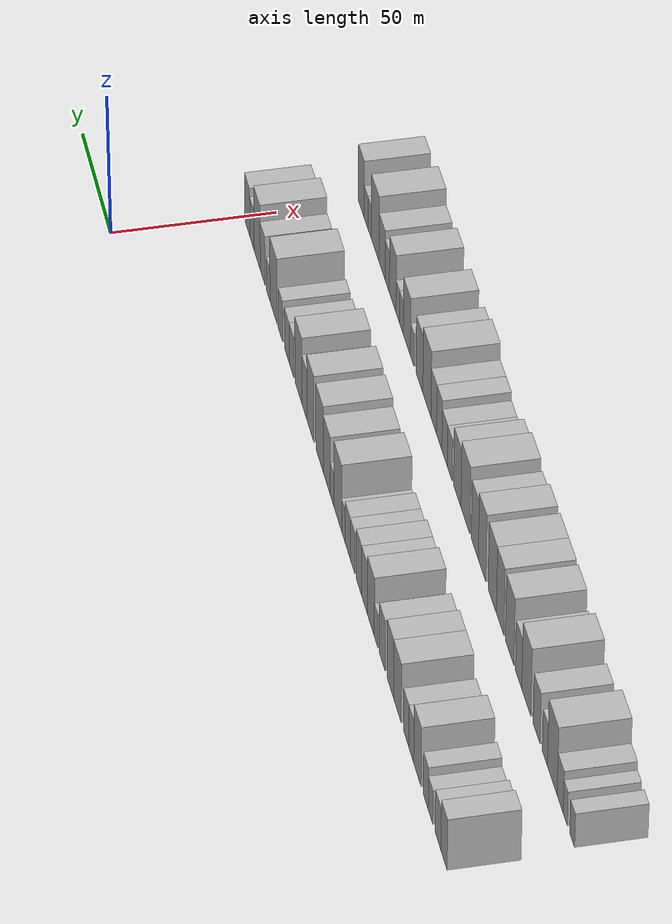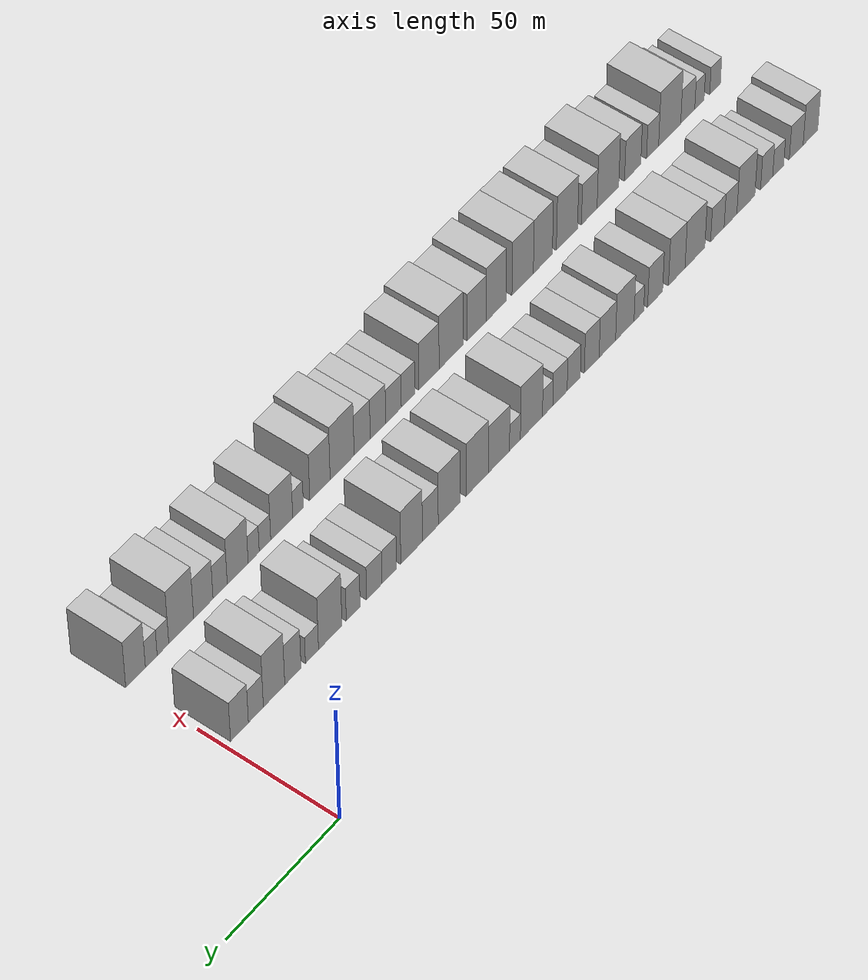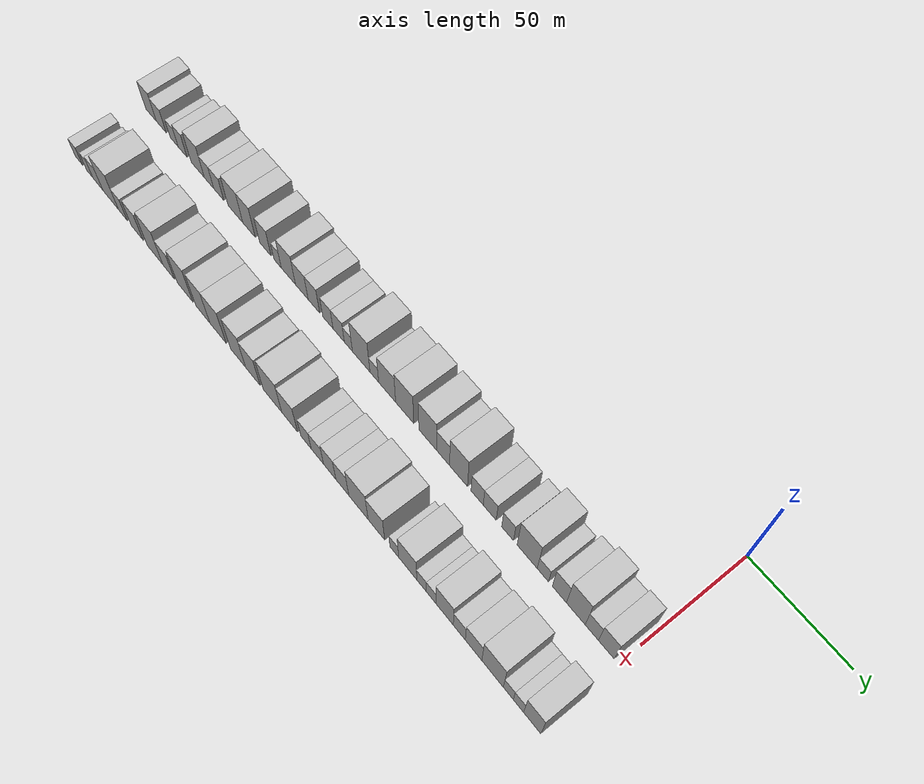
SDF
<sdf version="1.6">
 <world name="default">
  <model name="building_1">
   <static>1</static>
   <pose>50.0000 -286.0675 0 0.000000 0.000000 0.000000</pose>
   <link name="link">
    <pose>0 0 9.00 0 0 0</pose>
    <collision name="collision"><geometry><box><size>20.0000 7.8650 18.0000</size></box></geometry></collision>
    <visual name="visual">
     <cast_shadows>0</cast_shadows>
     <geometry><box><size>20.0000 7.8650 18.0000</size></box></geometry>
     <material>
      <script>
       <uri>model://HANNAS_wall/materials/scripts</uri>
       <uri>model://HANNAS_wall/materials/textures</uri>
       <name>vrc/HANNAS_wall</name>
      </script>
     </material>
    </visual>
   </link>
  </model>
  <model name="building_2">
   <static>1</static>
   <pose>50.0000 -278.4291 0 0.000000 0.000000 0.000000</pose>
   <link name="link">
    <pose>0 0 7.50 0 0 0</pose>
    <collision name="collision"><geometry><box><size>20.0000 7.4119 15.0000</size></box></geometry></collision>
    <visual name="visual">
     <cast_shadows>0</cast_shadows>
     <geometry><box><size>20.0000 7.4119 15.0000</size></box></geometry>
     <material>
      <script>
       <uri>model://HANNAS_wall/materials/scripts</uri>
       <uri>model://HANNAS_wall/materials/textures</uri>
       <name>vrc/HANNAS_wall</name>
      </script>
     </material>
    </visual>
   </link>
  </model>
  <model name="building_3">
   <static>1</static>
   <pose>50.0000 -268.7812 0 0.000000 0.000000 0.000000</pose>
   <link name="link">
    <pose>0 0 6.00 0 0 0</pose>
    <collision name="collision"><geometry><box><size>20.0000 5.8838 12.0000</size></box></geometry></collision>
    <visual name="visual">
     <cast_shadows>0</cast_shadows>
     <geometry><box><size>20.0000 5.8838 12.0000</size></box></geometry>
     <material>
      <script>
       <uri>model://HANNAS_wall/materials/scripts</uri>
       <uri>model://HANNAS_wall/materials/textures</uri>
       <name>vrc/HANNAS_wall</name>
      </script>
     </material>
    </visual>
   </link>
  </model>
  <model name="building_4">
   <static>1</static>
   <pose>50.0000 -262.6302 0 0.000000 0.000000 0.000000</pose>
   <link name="link">
    <pose>0 0 7.50 0 0 0</pose>
    <collision name="collision"><geometry><box><size>20.0000 6.4182 15.0000</size></box></geometry></collision>
    <visual name="visual">
     <cast_shadows>0</cast_shadows>
     <geometry><box><size>20.0000 6.4182 15.0000</size></box></geometry>
     <material>
      <script>
       <uri>model://HANNAS_wall/materials/scripts</uri>
       <uri>model://HANNAS_wall/materials/textures</uri>
       <name>vrc/HANNAS_wall</name>
      </script>
     </material>
    </visual>
   </link>
  </model>
  <model name="building_5">
   <static>1</static>
   <pose>50.0000 -251.6688 0 0.000000 0.000000 0.000000</pose>
   <link name="link">
    <pose>0 0 10.50 0 0 0</pose>
    <collision name="collision"><geometry><box><size>20.0000 9.5047 21.0000</size></box></geometry></collision>
    <visual name="visual">
     <cast_shadows>0</cast_shadows>
     <geometry><box><size>20.0000 9.5047 21.0000</size></box></geometry>
     <material>
      <script>
       <uri>model://HANNAS_wall/materials/scripts</uri>
       <uri>model://HANNAS_wall/materials/textures</uri>
       <name>vrc/HANNAS_wall</name>
      </script>
     </material>
    </visual>
   </link>
  </model>
  <model name="building_6">
   <static>1</static>
   <pose>50.0000 -243.5959 0 0.000000 0.000000 0.000000</pose>
   <link name="link">
    <pose>0 0 7.50 0 0 0</pose>
    <collision name="collision"><geometry><box><size>20.0000 6.6412 15.0000</size></box></geometry></collision>
    <visual name="visual">
     <cast_shadows>0</cast_shadows>
     <geometry><box><size>20.0000 6.6412 15.0000</size></box></geometry>
     <material>
      <script>
       <uri>model://HANNAS_wall/materials/scripts</uri>
       <uri>model://HANNAS_wall/materials/textures</uri>
       <name>vrc/HANNAS_wall</name>
      </script>
     </material>
    </visual>
   </link>
  </model>
  <model name="building_7">
   <static>1</static>
   <pose>50.0000 -236.7432 0 0.000000 0.000000 0.000000</pose>
   <link name="link">
    <pose>0 0 7.50 0 0 0</pose>
    <collision name="collision"><geometry><box><size>20.0000 7.0642 15.0000</size></box></geometry></collision>
    <visual name="visual">
     <cast_shadows>0</cast_shadows>
     <geometry><box><size>20.0000 7.0642 15.0000</size></box></geometry>
     <material>
      <script>
       <uri>model://HANNAS_wall/materials/scripts</uri>
       <uri>model://HANNAS_wall/materials/textures</uri>
       <name>vrc/HANNAS_wall</name>
      </script>
     </material>
    </visual>
   </link>
  </model>
  <model name="building_8">
   <static>1</static>
   <pose>50.0000 -225.0730 0 0.000000 0.000000 0.000000</pose>
   <link name="link">
    <pose>0 0 10.50 0 0 0</pose>
    <collision name="collision"><geometry><box><size>20.0000 10.2760 21.0000</size></box></geometry></collision>
    <visual name="visual">
     <cast_shadows>0</cast_shadows>
     <geometry><box><size>20.0000 10.2760 21.0000</size></box></geometry>
     <material>
      <script>
       <uri>model://HANNAS_wall/materials/scripts</uri>
       <uri>model://HANNAS_wall/materials/textures</uri>
       <name>vrc/HANNAS_wall</name>
      </script>
     </material>
    </visual>
   </link>
  </model>
  <model name="building_9">
   <static>1</static>
   <pose>50.0000 -215.6762 0 0.000000 0.000000 0.000000</pose>
   <link name="link">
    <pose>0 0 10.50 0 0 0</pose>
    <collision name="collision"><geometry><box><size>20.0000 8.5176 21.0000</size></box></geometry></collision>
    <visual name="visual">
     <cast_shadows>0</cast_shadows>
     <geometry><box><size>20.0000 8.5176 21.0000</size></box></geometry>
     <material>
      <script>
       <uri>model://HANNAS_wall/materials/scripts</uri>
       <uri>model://HANNAS_wall/materials/textures</uri>
       <name>vrc/HANNAS_wall</name>
      </script>
     </material>
    </visual>
   </link>
  </model>
  <model name="building_10">
   <static>1</static>
   <pose>50.0000 -204.5940 0 0.000000 0.000000 0.000000</pose>
   <link name="link">
    <pose>0 0 9.00 0 0 0</pose>
    <collision name="collision"><geometry><box><size>20.0000 7.6467 18.0000</size></box></geometry></collision>
    <visual name="visual">
     <cast_shadows>0</cast_shadows>
     <geometry><box><size>20.0000 7.6467 18.0000</size></box></geometry>
     <material>
      <script>
       <uri>model://HANNAS_wall/materials/scripts</uri>
       <uri>model://HANNAS_wall/materials/textures</uri>
       <name>vrc/HANNAS_wall</name>
      </script>
     </material>
    </visual>
   </link>
  </model>
  <model name="building_11">
   <static>1</static>
   <pose>50.0000 -196.3125 0 0.000000 0.000000 0.000000</pose>
   <link name="link">
    <pose>0 0 6.00 0 0 0</pose>
    <collision name="collision"><geometry><box><size>20.0000 4.9163 12.0000</size></box></geometry></collision>
    <visual name="visual">
     <cast_shadows>0</cast_shadows>
     <geometry><box><size>20.0000 4.9163 12.0000</size></box></geometry>
     <material>
      <script>
       <uri>model://HANNAS_wall/materials/scripts</uri>
       <uri>model://HANNAS_wall/materials/textures</uri>
       <name>vrc/HANNAS_wall</name>
      </script>
     </material>
    </visual>
   </link>
  </model>
  <model name="building_12">
   <static>1</static>
   <pose>50.0000 -189.1845 0 0.000000 0.000000 0.000000</pose>
   <link name="link">
    <pose>0 0 10.50 0 0 0</pose>
    <collision name="collision"><geometry><box><size>20.0000 9.3396 21.0000</size></box></geometry></collision>
    <visual name="visual">
     <cast_shadows>0</cast_shadows>
     <geometry><box><size>20.0000 9.3396 21.0000</size></box></geometry>
     <material>
      <script>
       <uri>model://HANNAS_wall/materials/scripts</uri>
       <uri>model://HANNAS_wall/materials/textures</uri>
       <name>vrc/HANNAS_wall</name>
      </script>
     </material>
    </visual>
   </link>
  </model>
  <model name="building_13">
   <static>1</static>
   <pose>50.0000 -180.3806 0 0.000000 0.000000 0.000000</pose>
   <link name="link">
    <pose>0 0 9.00 0 0 0</pose>
    <collision name="collision"><geometry><box><size>20.0000 8.2682 18.0000</size></box></geometry></collision>
    <visual name="visual">
     <cast_shadows>0</cast_shadows>
     <geometry><box><size>20.0000 8.2682 18.0000</size></box></geometry>
     <material>
      <script>
       <uri>model://HANNAS_wall/materials/scripts</uri>
       <uri>model://HANNAS_wall/materials/textures</uri>
       <name>vrc/HANNAS_wall</name>
      </script>
     </material>
    </visual>
   </link>
  </model>
  <model name="building_14">
   <static>1</static>
   <pose>50.0000 -172.5509 0 0.000000 0.000000 0.000000</pose>
   <link name="link">
    <pose>0 0 9.00 0 0 0</pose>
    <collision name="collision"><geometry><box><size>20.0000 7.3913 18.0000</size></box></geometry></collision>
    <visual name="visual">
     <cast_shadows>0</cast_shadows>
     <geometry><box><size>20.0000 7.3913 18.0000</size></box></geometry>
     <material>
      <script>
       <uri>model://HANNAS_wall/materials/scripts</uri>
       <uri>model://HANNAS_wall/materials/textures</uri>
       <name>vrc/HANNAS_wall</name>
      </script>
     </material>
    </visual>
   </link>
  </model>
  <model name="building_15">
   <static>1</static>
   <pose>50.0000 -163.5788 0 0.000000 0.000000 0.000000</pose>
   <link name="link">
    <pose>0 0 7.50 0 0 0</pose>
    <collision name="collision"><geometry><box><size>20.0000 6.5529 15.0000</size></box></geometry></collision>
    <visual name="visual">
     <cast_shadows>0</cast_shadows>
     <geometry><box><size>20.0000 6.5529 15.0000</size></box></geometry>
     <material>
      <script>
       <uri>model://HANNAS_wall/materials/scripts</uri>
       <uri>model://HANNAS_wall/materials/textures</uri>
       <name>vrc/HANNAS_wall</name>
      </script>
     </material>
    </visual>
   </link>
  </model>
  <model name="building_16">
   <static>1</static>
   <pose>50.0000 -156.7487 0 0.000000 0.000000 0.000000</pose>
   <link name="link">
    <pose>0 0 7.50 0 0 0</pose>
    <collision name="collision"><geometry><box><size>20.0000 7.1074 15.0000</size></box></geometry></collision>
    <visual name="visual">
     <cast_shadows>0</cast_shadows>
     <geometry><box><size>20.0000 7.1074 15.0000</size></box></geometry>
     <material>
      <script>
       <uri>model://HANNAS_wall/materials/scripts</uri>
       <uri>model://HANNAS_wall/materials/textures</uri>
       <name>vrc/HANNAS_wall</name>
      </script>
     </material>
    </visual>
   </link>
  </model>
  <model name="building_17">
   <static>1</static>
   <pose>50.0000 -150.6562 0 0.000000 0.000000 0.000000</pose>
   <link name="link">
    <pose>0 0 6.00 0 0 0</pose>
    <collision name="collision"><geometry><box><size>20.0000 5.0775 12.0000</size></box></geometry></collision>
    <visual name="visual">
     <cast_shadows>0</cast_shadows>
     <geometry><box><size>20.0000 5.0775 12.0000</size></box></geometry>
     <material>
      <script>
       <uri>model://HANNAS_wall/materials/scripts</uri>
       <uri>model://HANNAS_wall/materials/textures</uri>
       <name>vrc/HANNAS_wall</name>
      </script>
     </material>
    </visual>
   </link>
  </model>
  <model name="building_18">
   <static>1</static>
   <pose>50.0000 -142.7013 0 0.000000 0.000000 0.000000</pose>
   <link name="link">
    <pose>0 0 12.00 0 0 0</pose>
    <collision name="collision"><geometry><box><size>20.0000 10.8324 24.0000</size></box></geometry></collision>
    <visual name="visual">
     <cast_shadows>0</cast_shadows>
     <geometry><box><size>20.0000 10.8324 24.0000</size></box></geometry>
     <material>
      <script>
       <uri>model://HANNAS_wall/materials/scripts</uri>
       <uri>model://HANNAS_wall/materials/textures</uri>
       <name>vrc/HANNAS_wall</name>
      </script>
     </material>
    </visual>
   </link>
  </model>
  <model name="building_19">
   <static>1</static>
   <pose>50.0000 -134.6364 0 0.000000 0.000000 0.000000</pose>
   <link name="link">
    <pose>0 0 6.00 0 0 0</pose>
    <collision name="collision"><geometry><box><size>20.0000 5.2974 12.0000</size></box></geometry></collision>
    <visual name="visual">
     <cast_shadows>0</cast_shadows>
     <geometry><box><size>20.0000 5.2974 12.0000</size></box></geometry>
     <material>
      <script>
       <uri>model://HANNAS_wall/materials/scripts</uri>
       <uri>model://HANNAS_wall/materials/textures</uri>
       <name>vrc/HANNAS_wall</name>
      </script>
     </material>
    </visual>
   </link>
  </model>
  <model name="building_20">
   <static>1</static>
   <pose>50.0000 -126.8587 0 0.000000 0.000000 0.000000</pose>
   <link name="link">
    <pose>0 0 10.50 0 0 0</pose>
    <collision name="collision"><geometry><box><size>20.0000 10.2580 21.0000</size></box></geometry></collision>
    <visual name="visual">
     <cast_shadows>0</cast_shadows>
     <geometry><box><size>20.0000 10.2580 21.0000</size></box></geometry>
     <material>
      <script>
       <uri>model://HANNAS_wall/materials/scripts</uri>
       <uri>model://HANNAS_wall/materials/textures</uri>
       <name>vrc/HANNAS_wall</name>
      </script>
     </material>
    </visual>
   </link>
  </model>
  <model name="building_21">
   <static>1</static>
   <pose>50.0000 -116.3486 0 0.000000 0.000000 0.000000</pose>
   <link name="link">
    <pose>0 0 12.00 0 0 0</pose>
    <collision name="collision"><geometry><box><size>20.0000 10.7622 24.0000</size></box></geometry></collision>
    <visual name="visual">
     <cast_shadows>0</cast_shadows>
     <geometry><box><size>20.0000 10.7622 24.0000</size></box></geometry>
     <material>
      <script>
       <uri>model://HANNAS_wall/materials/scripts</uri>
       <uri>model://HANNAS_wall/materials/textures</uri>
       <name>vrc/HANNAS_wall</name>
      </script>
     </material>
    </visual>
   </link>
  </model>
  <model name="building_22">
   <static>1</static>
   <pose>50.0000 -102.8429 0 0.000000 0.000000 0.000000</pose>
   <link name="link">
    <pose>0 0 12.00 0 0 0</pose>
    <collision name="collision"><geometry><box><size>20.0000 10.2493 24.0000</size></box></geometry></collision>
    <visual name="visual">
     <cast_shadows>0</cast_shadows>
     <geometry><box><size>20.0000 10.2493 24.0000</size></box></geometry>
     <material>
      <script>
       <uri>model://HANNAS_wall/materials/scripts</uri>
       <uri>model://HANNAS_wall/materials/textures</uri>
       <name>vrc/HANNAS_wall</name>
      </script>
     </material>
    </visual>
   </link>
  </model>
  <model name="building_23">
   <static>1</static>
   <pose>50.0000 -93.9561 0 0.000000 0.000000 0.000000</pose>
   <link name="link">
    <pose>0 0 9.00 0 0 0</pose>
    <collision name="collision"><geometry><box><size>20.0000 7.5243 18.0000</size></box></geometry></collision>
    <visual name="visual">
     <cast_shadows>0</cast_shadows>
     <geometry><box><size>20.0000 7.5243 18.0000</size></box></geometry>
     <material>
      <script>
       <uri>model://HANNAS_wall/materials/scripts</uri>
       <uri>model://HANNAS_wall/materials/textures</uri>
       <name>vrc/HANNAS_wall</name>
      </script>
     </material>
    </visual>
   </link>
  </model>
  <model name="building_24">
   <static>1</static>
   <pose>50.0000 -85.1088 0 0.000000 0.000000 0.000000</pose>
   <link name="link">
    <pose>0 0 12.00 0 0 0</pose>
    <collision name="collision"><geometry><box><size>20.0000 10.1702 24.0000</size></box></geometry></collision>
    <visual name="visual">
     <cast_shadows>0</cast_shadows>
     <geometry><box><size>20.0000 10.1702 24.0000</size></box></geometry>
     <material>
      <script>
       <uri>model://HANNAS_wall/materials/scripts</uri>
       <uri>model://HANNAS_wall/materials/textures</uri>
       <name>vrc/HANNAS_wall</name>
      </script>
     </material>
    </visual>
   </link>
  </model>
  <model name="building_25">
   <static>1</static>
   <pose>50.0000 -74.5990 0 0.000000 0.000000 0.000000</pose>
   <link name="link">
    <pose>0 0 7.50 0 0 0</pose>
    <collision name="collision"><geometry><box><size>20.0000 6.8495 15.0000</size></box></geometry></collision>
    <visual name="visual">
     <cast_shadows>0</cast_shadows>
     <geometry><box><size>20.0000 6.8495 15.0000</size></box></geometry>
     <material>
      <script>
       <uri>model://HANNAS_wall/materials/scripts</uri>
       <uri>model://HANNAS_wall/materials/textures</uri>
       <name>vrc/HANNAS_wall</name>
      </script>
     </material>
    </visual>
   </link>
  </model>
  <model name="building_26">
   <static>1</static>
   <pose>50.0000 -67.6113 0 0.000000 0.000000 0.000000</pose>
   <link name="link">
    <pose>0 0 7.50 0 0 0</pose>
    <collision name="collision"><geometry><box><size>20.0000 7.1259 15.0000</size></box></geometry></collision>
    <visual name="visual">
     <cast_shadows>0</cast_shadows>
     <geometry><box><size>20.0000 7.1259 15.0000</size></box></geometry>
     <material>
      <script>
       <uri>model://HANNAS_wall/materials/scripts</uri>
       <uri>model://HANNAS_wall/materials/textures</uri>
       <name>vrc/HANNAS_wall</name>
      </script>
     </material>
    </visual>
   </link>
  </model>
  <model name="building_27">
   <static>1</static>
   <pose>50.0000 -57.8400 0 0.000000 0.000000 0.000000</pose>
   <link name="link">
    <pose>0 0 7.50 0 0 0</pose>
    <collision name="collision"><geometry><box><size>20.0000 6.4167 15.0000</size></box></geometry></collision>
    <visual name="visual">
     <cast_shadows>0</cast_shadows>
     <geometry><box><size>20.0000 6.4167 15.0000</size></box></geometry>
     <material>
      <script>
       <uri>model://HANNAS_wall/materials/scripts</uri>
       <uri>model://HANNAS_wall/materials/textures</uri>
       <name>vrc/HANNAS_wall</name>
      </script>
     </material>
    </visual>
   </link>
  </model>
  <model name="building_28">
   <static>1</static>
   <pose>50.0000 -47.2532 0 0.000000 0.000000 0.000000</pose>
   <link name="link">
    <pose>0 0 12.00 0 0 0</pose>
    <collision name="collision"><geometry><box><size>20.0000 10.7568 24.0000</size></box></geometry></collision>
    <visual name="visual">
     <cast_shadows>0</cast_shadows>
     <geometry><box><size>20.0000 10.7568 24.0000</size></box></geometry>
     <material>
      <script>
       <uri>model://HANNAS_wall/materials/scripts</uri>
       <uri>model://HANNAS_wall/materials/textures</uri>
       <name>vrc/HANNAS_wall</name>
      </script>
     </material>
    </visual>
   </link>
  </model>
  <model name="building_29">
   <static>1</static>
   <pose>50.0000 -38.8885 0 0.000000 0.000000 0.000000</pose>
   <link name="link">
    <pose>0 0 6.00 0 0 0</pose>
    <collision name="collision"><geometry><box><size>20.0000 5.9726 12.0000</size></box></geometry></collision>
    <visual name="visual">
     <cast_shadows>0</cast_shadows>
     <geometry><box><size>20.0000 5.9726 12.0000</size></box></geometry>
     <material>
      <script>
       <uri>model://HANNAS_wall/materials/scripts</uri>
       <uri>model://HANNAS_wall/materials/textures</uri>
       <name>vrc/HANNAS_wall</name>
      </script>
     </material>
    </visual>
   </link>
  </model>
  <model name="building_30">
   <static>1</static>
   <pose>50.0000 -30.2129 0 0.000000 0.000000 0.000000</pose>
   <link name="link">
    <pose>0 0 9.00 0 0 0</pose>
    <collision name="collision"><geometry><box><size>20.0000 7.3786 18.0000</size></box></geometry></collision>
    <visual name="visual">
     <cast_shadows>0</cast_shadows>
     <geometry><box><size>20.0000 7.3786 18.0000</size></box></geometry>
     <material>
      <script>
       <uri>model://HANNAS_wall/materials/scripts</uri>
       <uri>model://HANNAS_wall/materials/textures</uri>
       <name>vrc/HANNAS_wall</name>
      </script>
     </material>
    </visual>
   </link>
  </model>
  <model name="building_31">
   <static>1</static>
   <pose>50.0000 -21.6969 0 0.000000 0.000000 0.000000</pose>
   <link name="link">
    <pose>0 0 12.00 0 0 0</pose>
    <collision name="collision"><geometry><box><size>20.0000 9.6533 24.0000</size></box></geometry></collision>
    <visual name="visual">
     <cast_shadows>0</cast_shadows>
     <geometry><box><size>20.0000 9.6533 24.0000</size></box></geometry>
     <material>
      <script>
       <uri>model://HANNAS_wall/materials/scripts</uri>
       <uri>model://HANNAS_wall/materials/textures</uri>
       <name>vrc/HANNAS_wall</name>
      </script>
     </material>
    </visual>
   </link>
  </model>
  <model name="building_32">
   <static>1</static>
   <pose>50.0000 -13.5113 0 0.000000 0.000000 0.000000</pose>
   <link name="link">
    <pose>0 0 7.50 0 0 0</pose>
    <collision name="collision"><geometry><box><size>20.0000 6.7177 15.0000</size></box></geometry></collision>
    <visual name="visual">
     <cast_shadows>0</cast_shadows>
     <geometry><box><size>20.0000 6.7177 15.0000</size></box></geometry>
     <material>
      <script>
       <uri>model://HANNAS_wall/materials/scripts</uri>
       <uri>model://HANNAS_wall/materials/textures</uri>
       <name>vrc/HANNAS_wall</name>
      </script>
     </material>
    </visual>
   </link>
  </model>
  <model name="building_33">
   <static>1</static>
   <pose>50.0000 -6.1777 0 0.000000 0.000000 0.000000</pose>
   <link name="link">
    <pose>0 0 9.00 0 0 0</pose>
    <collision name="collision"><geometry><box><size>20.0000 7.9495 18.0000</size></box></geometry></collision>
    <visual name="visual">
     <cast_shadows>0</cast_shadows>
     <geometry><box><size>20.0000 7.9495 18.0000</size></box></geometry>
     <material>
      <script>
       <uri>model://HANNAS_wall/materials/scripts</uri>
       <uri>model://HANNAS_wall/materials/textures</uri>
       <name>vrc/HANNAS_wall</name>
      </script>
     </material>
    </visual>
   </link>
  </model>
  <model name="building_67">
   <static>1</static>
   <pose>85.0000 -285.1506 0 0.000000 0.000000 0.000000</pose>
   <link name="link">
    <pose>0 0 6.00 0 0 0</pose>
    <collision name="collision"><geometry><box><size>20.0000 5.6988 12.0000</size></box></geometry></collision>
    <visual name="visual">
     <cast_shadows>0</cast_shadows>
     <geometry><box><size>20.0000 5.6988 12.0000</size></box></geometry>
     <material>
      <script>
       <uri>model://HANNAS_wall/materials/scripts</uri>
       <uri>model://HANNAS_wall/materials/textures</uri>
       <name>vrc/HANNAS_wall</name>
      </script>
     </material>
    </visual>
   </link>
  </model>
  <model name="building_68">
   <static>1</static>
   <pose>85.0000 -276.8259 0 0.000000 0.000000 0.000000</pose>
   <link name="link">
    <pose>0 0 6.00 0 0 0</pose>
    <collision name="collision"><geometry><box><size>20.0000 4.9505 12.0000</size></box></geometry></collision>
    <visual name="visual">
     <cast_shadows>0</cast_shadows>
     <geometry><box><size>20.0000 4.9505 12.0000</size></box></geometry>
     <material>
      <script>
       <uri>model://HANNAS_wall/materials/scripts</uri>
       <uri>model://HANNAS_wall/materials/textures</uri>
       <name>vrc/HANNAS_wall</name>
      </script>
     </material>
    </visual>
   </link>
  </model>
  <model name="building_69">
   <static>1</static>
   <pose>85.0000 -270.6300 0 0.000000 0.000000 0.000000</pose>
   <link name="link">
    <pose>0 0 7.50 0 0 0</pose>
    <collision name="collision"><geometry><box><size>20.0000 7.4412 15.0000</size></box></geometry></collision>
    <visual name="visual">
     <cast_shadows>0</cast_shadows>
     <geometry><box><size>20.0000 7.4412 15.0000</size></box></geometry>
     <material>
      <script>
       <uri>model://HANNAS_wall/materials/scripts</uri>
       <uri>model://HANNAS_wall/materials/textures</uri>
       <name>vrc/HANNAS_wall</name>
      </script>
     </material>
    </visual>
   </link>
  </model>
  <model name="building_70">
   <static>1</static>
   <pose>85.0000 -261.0859 0 0.000000 0.000000 0.000000</pose>
   <link name="link">
    <pose>0 0 12.00 0 0 0</pose>
    <collision name="collision"><geometry><box><size>20.0000 11.6471 24.0000</size></box></geometry></collision>
    <visual name="visual">
     <cast_shadows>0</cast_shadows>
     <geometry><box><size>20.0000 11.6471 24.0000</size></box></geometry>
     <material>
      <script>
       <uri>model://HANNAS_wall/materials/scripts</uri>
       <uri>model://HANNAS_wall/materials/textures</uri>
       <name>vrc/HANNAS_wall</name>
      </script>
     </material>
    </visual>
   </link>
  </model>
  <model name="building_71">
   <static>1</static>
   <pose>85.0000 -252.1158 0 0.000000 0.000000 0.000000</pose>
   <link name="link">
    <pose>0 0 7.50 0 0 0</pose>
    <collision name="collision"><geometry><box><size>20.0000 6.2930 15.0000</size></box></geometry></collision>
    <visual name="visual">
     <cast_shadows>0</cast_shadows>
     <geometry><box><size>20.0000 6.2930 15.0000</size></box></geometry>
     <material>
      <script>
       <uri>model://HANNAS_wall/materials/scripts</uri>
       <uri>model://HANNAS_wall/materials/textures</uri>
       <name>vrc/HANNAS_wall</name>
      </script>
     </material>
    </visual>
   </link>
  </model>
  <model name="building_72">
   <static>1</static>
   <pose>85.0000 -241.7448 0 0.000000 0.000000 0.000000</pose>
   <link name="link">
    <pose>0 0 9.00 0 0 0</pose>
    <collision name="collision"><geometry><box><size>20.0000 8.4490 18.0000</size></box></geometry></collision>
    <visual name="visual">
     <cast_shadows>0</cast_shadows>
     <geometry><box><size>20.0000 8.4490 18.0000</size></box></geometry>
     <material>
      <script>
       <uri>model://HANNAS_wall/materials/scripts</uri>
       <uri>model://HANNAS_wall/materials/textures</uri>
       <name>vrc/HANNAS_wall</name>
      </script>
     </material>
    </visual>
   </link>
  </model>
  <model name="building_73">
   <static>1</static>
   <pose>85.0000 -228.9355 0 0.000000 0.000000 0.000000</pose>
   <link name="link">
    <pose>0 0 12.00 0 0 0</pose>
    <collision name="collision"><geometry><box><size>20.0000 11.1696 24.0000</size></box></geometry></collision>
    <visual name="visual">
     <cast_shadows>0</cast_shadows>
     <geometry><box><size>20.0000 11.1696 24.0000</size></box></geometry>
     <material>
      <script>
       <uri>model://HANNAS_wall/materials/scripts</uri>
       <uri>model://HANNAS_wall/materials/textures</uri>
       <name>vrc/HANNAS_wall</name>
      </script>
     </material>
    </visual>
   </link>
  </model>
  <model name="building_74">
   <static>1</static>
   <pose>85.0000 -219.3561 0 0.000000 0.000000 0.000000</pose>
   <link name="link">
    <pose>0 0 9.00 0 0 0</pose>
    <collision name="collision"><geometry><box><size>20.0000 7.9892 18.0000</size></box></geometry></collision>
    <visual name="visual">
     <cast_shadows>0</cast_shadows>
     <geometry><box><size>20.0000 7.9892 18.0000</size></box></geometry>
     <material>
      <script>
       <uri>model://HANNAS_wall/materials/scripts</uri>
       <uri>model://HANNAS_wall/materials/textures</uri>
       <name>vrc/HANNAS_wall</name>
      </script>
     </material>
    </visual>
   </link>
  </model>
  <model name="building_75">
   <static>1</static>
   <pose>85.0000 -207.9772 0 0.000000 0.000000 0.000000</pose>
   <link name="link">
    <pose>0 0 12.00 0 0 0</pose>
    <collision name="collision"><geometry><box><size>20.0000 10.7686 24.0000</size></box></geometry></collision>
    <visual name="visual">
     <cast_shadows>0</cast_shadows>
     <geometry><box><size>20.0000 10.7686 24.0000</size></box></geometry>
     <material>
      <script>
       <uri>model://HANNAS_wall/materials/scripts</uri>
       <uri>model://HANNAS_wall/materials/textures</uri>
       <name>vrc/HANNAS_wall</name>
      </script>
     </material>
    </visual>
   </link>
  </model>
  <model name="building_76">
   <static>1</static>
   <pose>85.0000 -195.7918 0 0.000000 0.000000 0.000000</pose>
   <link name="link">
    <pose>0 0 12.00 0 0 0</pose>
    <collision name="collision"><geometry><box><size>20.0000 9.6022 24.0000</size></box></geometry></collision>
    <visual name="visual">
     <cast_shadows>0</cast_shadows>
     <geometry><box><size>20.0000 9.6022 24.0000</size></box></geometry>
     <material>
      <script>
       <uri>model://HANNAS_wall/materials/scripts</uri>
       <uri>model://HANNAS_wall/materials/textures</uri>
       <name>vrc/HANNAS_wall</name>
      </script>
     </material>
    </visual>
   </link>
  </model>
  <model name="building_77">
   <static>1</static>
   <pose>85.0000 -185.6393 0 0.000000 0.000000 0.000000</pose>
   <link name="link">
    <pose>0 0 12.00 0 0 0</pose>
    <collision name="collision"><geometry><box><size>20.0000 10.7027 24.0000</size></box></geometry></collision>
    <visual name="visual">
     <cast_shadows>0</cast_shadows>
     <geometry><box><size>20.0000 10.7027 24.0000</size></box></geometry>
     <material>
      <script>
       <uri>model://HANNAS_wall/materials/scripts</uri>
       <uri>model://HANNAS_wall/materials/textures</uri>
       <name>vrc/HANNAS_wall</name>
      </script>
     </material>
    </visual>
   </link>
  </model>
  <model name="building_78">
   <static>1</static>
   <pose>85.0000 -172.3731 0 0.000000 0.000000 0.000000</pose>
   <link name="link">
    <pose>0 0 12.00 0 0 0</pose>
    <collision name="collision"><geometry><box><size>20.0000 9.8296 24.0000</size></box></geometry></collision>
    <visual name="visual">
     <cast_shadows>0</cast_shadows>
     <geometry><box><size>20.0000 9.8296 24.0000</size></box></geometry>
     <material>
      <script>
       <uri>model://HANNAS_wall/materials/scripts</uri>
       <uri>model://HANNAS_wall/materials/textures</uri>
       <name>vrc/HANNAS_wall</name>
      </script>
     </material>
    </visual>
   </link>
  </model>
  <model name="building_79">
   <static>1</static>
   <pose>85.0000 -162.7761 0 0.000000 0.000000 0.000000</pose>
   <link name="link">
    <pose>0 0 10.50 0 0 0</pose>
    <collision name="collision"><geometry><box><size>20.0000 9.3645 21.0000</size></box></geometry></collision>
    <visual name="visual">
     <cast_shadows>0</cast_shadows>
     <geometry><box><size>20.0000 9.3645 21.0000</size></box></geometry>
     <material>
      <script>
       <uri>model://HANNAS_wall/materials/scripts</uri>
       <uri>model://HANNAS_wall/materials/textures</uri>
       <name>vrc/HANNAS_wall</name>
      </script>
     </material>
    </visual>
   </link>
  </model>
  <model name="building_80">
   <static>1</static>
   <pose>85.0000 -150.2133 0 0.000000 0.000000 0.000000</pose>
   <link name="link">
    <pose>0 0 12.00 0 0 0</pose>
    <collision name="collision"><geometry><box><size>20.0000 11.7609 24.0000</size></box></geometry></collision>
    <visual name="visual">
     <cast_shadows>0</cast_shadows>
     <geometry><box><size>20.0000 11.7609 24.0000</size></box></geometry>
     <material>
      <script>
       <uri>model://HANNAS_wall/materials/scripts</uri>
       <uri>model://HANNAS_wall/materials/textures</uri>
       <name>vrc/HANNAS_wall</name>
      </script>
     </material>
    </visual>
   </link>
  </model>
  <model name="building_81">
   <static>1</static>
   <pose>85.0000 -139.4154 0 0.000000 0.000000 0.000000</pose>
   <link name="link">
    <pose>0 0 10.50 0 0 0</pose>
    <collision name="collision"><geometry><box><size>20.0000 9.8349 21.0000</size></box></geometry></collision>
    <visual name="visual">
     <cast_shadows>0</cast_shadows>
     <geometry><box><size>20.0000 9.8349 21.0000</size></box></geometry>
     <material>
      <script>
       <uri>model://HANNAS_wall/materials/scripts</uri>
       <uri>model://HANNAS_wall/materials/textures</uri>
       <name>vrc/HANNAS_wall</name>
      </script>
     </material>
    </visual>
   </link>
  </model>
  <model name="building_82">
   <static>1</static>
   <pose>85.0000 -129.2692 0 0.000000 0.000000 0.000000</pose>
   <link name="link">
    <pose>0 0 7.50 0 0 0</pose>
    <collision name="collision"><geometry><box><size>20.0000 6.4576 15.0000</size></box></geometry></collision>
    <visual name="visual">
     <cast_shadows>0</cast_shadows>
     <geometry><box><size>20.0000 6.4576 15.0000</size></box></geometry>
     <material>
      <script>
       <uri>model://HANNAS_wall/materials/scripts</uri>
       <uri>model://HANNAS_wall/materials/textures</uri>
       <name>vrc/HANNAS_wall</name>
      </script>
     </material>
    </visual>
   </link>
  </model>
  <model name="building_83">
   <static>1</static>
   <pose>85.0000 -122.2935 0 0.000000 0.000000 0.000000</pose>
   <link name="link">
    <pose>0 0 7.50 0 0 0</pose>
    <collision name="collision"><geometry><box><size>20.0000 7.4937 15.0000</size></box></geometry></collision>
    <visual name="visual">
     <cast_shadows>0</cast_shadows>
     <geometry><box><size>20.0000 7.4937 15.0000</size></box></geometry>
     <material>
      <script>
       <uri>model://HANNAS_wall/materials/scripts</uri>
       <uri>model://HANNAS_wall/materials/textures</uri>
       <name>vrc/HANNAS_wall</name>
      </script>
     </material>
    </visual>
   </link>
  </model>
  <model name="building_84">
   <static>1</static>
   <pose>85.0000 -114.8585 0 0.000000 0.000000 0.000000</pose>
   <link name="link">
    <pose>0 0 9.00 0 0 0</pose>
    <collision name="collision"><geometry><box><size>20.0000 7.3764 18.0000</size></box></geometry></collision>
    <visual name="visual">
     <cast_shadows>0</cast_shadows>
     <geometry><box><size>20.0000 7.3764 18.0000</size></box></geometry>
     <material>
      <script>
       <uri>model://HANNAS_wall/materials/scripts</uri>
       <uri>model://HANNAS_wall/materials/textures</uri>
       <name>vrc/HANNAS_wall</name>
      </script>
     </material>
    </visual>
   </link>
  </model>
  <model name="building_85">
   <static>1</static>
   <pose>85.0000 -107.3263 0 0.000000 0.000000 0.000000</pose>
   <link name="link">
    <pose>0 0 9.00 0 0 0</pose>
    <collision name="collision"><geometry><box><size>20.0000 7.6880 18.0000</size></box></geometry></collision>
    <visual name="visual">
     <cast_shadows>0</cast_shadows>
     <geometry><box><size>20.0000 7.6880 18.0000</size></box></geometry>
     <material>
      <script>
       <uri>model://HANNAS_wall/materials/scripts</uri>
       <uri>model://HANNAS_wall/materials/textures</uri>
       <name>vrc/HANNAS_wall</name>
      </script>
     </material>
    </visual>
   </link>
  </model>
  <model name="building_86">
   <static>1</static>
   <pose>85.0000 -97.8242 0 0.000000 0.000000 0.000000</pose>
   <link name="link">
    <pose>0 0 12.00 0 0 0</pose>
    <collision name="collision"><geometry><box><size>20.0000 11.3162 24.0000</size></box></geometry></collision>
    <visual name="visual">
     <cast_shadows>0</cast_shadows>
     <geometry><box><size>20.0000 11.3162 24.0000</size></box></geometry>
     <material>
      <script>
       <uri>model://HANNAS_wall/materials/scripts</uri>
       <uri>model://HANNAS_wall/materials/textures</uri>
       <name>vrc/HANNAS_wall</name>
      </script>
     </material>
    </visual>
   </link>
  </model>
  <model name="building_87">
   <static>1</static>
   <pose>85.0000 -87.3983 0 0.000000 0.000000 0.000000</pose>
   <link name="link">
    <pose>0 0 10.50 0 0 0</pose>
    <collision name="collision"><geometry><box><size>20.0000 9.5356 21.0000</size></box></geometry></collision>
    <visual name="visual">
     <cast_shadows>0</cast_shadows>
     <geometry><box><size>20.0000 9.5356 21.0000</size></box></geometry>
     <material>
      <script>
       <uri>model://HANNAS_wall/materials/scripts</uri>
       <uri>model://HANNAS_wall/materials/textures</uri>
       <name>vrc/HANNAS_wall</name>
      </script>
     </material>
    </visual>
   </link>
  </model>
  <model name="building_88">
   <static>1</static>
   <pose>85.0000 -77.1478 0 0.000000 0.000000 0.000000</pose>
   <link name="link">
    <pose>0 0 6.00 0 0 0</pose>
    <collision name="collision"><geometry><box><size>20.0000 4.9653 12.0000</size></box></geometry></collision>
    <visual name="visual">
     <cast_shadows>0</cast_shadows>
     <geometry><box><size>20.0000 4.9653 12.0000</size></box></geometry>
     <material>
      <script>
       <uri>model://HANNAS_wall/materials/scripts</uri>
       <uri>model://HANNAS_wall/materials/textures</uri>
       <name>vrc/HANNAS_wall</name>
      </script>
     </material>
    </visual>
   </link>
  </model>
  <model name="building_89">
   <static>1</static>
   <pose>85.0000 -69.5738 0 0.000000 0.000000 0.000000</pose>
   <link name="link">
    <pose>0 0 10.50 0 0 0</pose>
    <collision name="collision"><geometry><box><size>20.0000 10.1828 21.0000</size></box></geometry></collision>
    <visual name="visual">
     <cast_shadows>0</cast_shadows>
     <geometry><box><size>20.0000 10.1828 21.0000</size></box></geometry>
     <material>
      <script>
       <uri>model://HANNAS_wall/materials/scripts</uri>
       <uri>model://HANNAS_wall/materials/textures</uri>
       <name>vrc/HANNAS_wall</name>
      </script>
     </material>
    </visual>
   </link>
  </model>
  <model name="building_90">
   <static>1</static>
   <pose>85.0000 -61.8285 0 0.000000 0.000000 0.000000</pose>
   <link name="link">
    <pose>0 0 6.00 0 0 0</pose>
    <collision name="collision"><geometry><box><size>20.0000 5.3077 12.0000</size></box></geometry></collision>
    <visual name="visual">
     <cast_shadows>0</cast_shadows>
     <geometry><box><size>20.0000 5.3077 12.0000</size></box></geometry>
     <material>
      <script>
       <uri>model://HANNAS_wall/materials/scripts</uri>
       <uri>model://HANNAS_wall/materials/textures</uri>
       <name>vrc/HANNAS_wall</name>
      </script>
     </material>
    </visual>
   </link>
  </model>
  <model name="building_91">
   <static>1</static>
   <pose>85.0000 -56.6289 0 0.000000 0.000000 0.000000</pose>
   <link name="link">
    <pose>0 0 6.00 0 0 0</pose>
    <collision name="collision"><geometry><box><size>20.0000 5.0915 12.0000</size></box></geometry></collision>
    <visual name="visual">
     <cast_shadows>0</cast_shadows>
     <geometry><box><size>20.0000 5.0915 12.0000</size></box></geometry>
     <material>
      <script>
       <uri>model://HANNAS_wall/materials/scripts</uri>
       <uri>model://HANNAS_wall/materials/textures</uri>
       <name>vrc/HANNAS_wall</name>
      </script>
     </material>
    </visual>
   </link>
  </model>
  <model name="building_92">
   <static>1</static>
   <pose>85.0000 -49.3052 0 0.000000 0.000000 0.000000</pose>
   <link name="link">
    <pose>0 0 10.50 0 0 0</pose>
    <collision name="collision"><geometry><box><size>20.0000 9.5559 21.0000</size></box></geometry></collision>
    <visual name="visual">
     <cast_shadows>0</cast_shadows>
     <geometry><box><size>20.0000 9.5559 21.0000</size></box></geometry>
     <material>
      <script>
       <uri>model://HANNAS_wall/materials/scripts</uri>
       <uri>model://HANNAS_wall/materials/textures</uri>
       <name>vrc/HANNAS_wall</name>
      </script>
     </material>
    </visual>
   </link>
  </model>
  <model name="building_93">
   <static>1</static>
   <pose>85.0000 -41.2968 0 0.000000 0.000000 0.000000</pose>
   <link name="link">
    <pose>0 0 7.50 0 0 0</pose>
    <collision name="collision"><geometry><box><size>20.0000 6.4609 15.0000</size></box></geometry></collision>
    <visual name="visual">
     <cast_shadows>0</cast_shadows>
     <geometry><box><size>20.0000 6.4609 15.0000</size></box></geometry>
     <material>
      <script>
       <uri>model://HANNAS_wall/materials/scripts</uri>
       <uri>model://HANNAS_wall/materials/textures</uri>
       <name>vrc/HANNAS_wall</name>
      </script>
     </material>
    </visual>
   </link>
  </model>
  <model name="building_94">
   <static>1</static>
   <pose>85.0000 -33.6878 0 0.000000 0.000000 0.000000</pose>
   <link name="link">
    <pose>0 0 9.00 0 0 0</pose>
    <collision name="collision"><geometry><box><size>20.0000 8.7571 18.0000</size></box></geometry></collision>
    <visual name="visual">
     <cast_shadows>0</cast_shadows>
     <geometry><box><size>20.0000 8.7571 18.0000</size></box></geometry>
     <material>
      <script>
       <uri>model://HANNAS_wall/materials/scripts</uri>
       <uri>model://HANNAS_wall/materials/textures</uri>
       <name>vrc/HANNAS_wall</name>
      </script>
     </material>
    </visual>
   </link>
  </model>
  <model name="building_95">
   <static>1</static>
   <pose>85.0000 -23.7187 0 0.000000 0.000000 0.000000</pose>
   <link name="link">
    <pose>0 0 12.00 0 0 0</pose>
    <collision name="collision"><geometry><box><size>20.0000 11.1811 24.0000</size></box></geometry></collision>
    <visual name="visual">
     <cast_shadows>0</cast_shadows>
     <geometry><box><size>20.0000 11.1811 24.0000</size></box></geometry>
     <material>
      <script>
       <uri>model://HANNAS_wall/materials/scripts</uri>
       <uri>model://HANNAS_wall/materials/textures</uri>
       <name>vrc/HANNAS_wall</name>
      </script>
     </material>
    </visual>
   </link>
  </model>
  <model name="building_96">
   <static>1</static>
   <pose>85.0000 -15.5398 0 0.000000 0.000000 0.000000</pose>
   <link name="link">
    <pose>0 0 6.00 0 0 0</pose>
    <collision name="collision"><geometry><box><size>20.0000 5.1767 12.0000</size></box></geometry></collision>
    <visual name="visual">
     <cast_shadows>0</cast_shadows>
     <geometry><box><size>20.0000 5.1767 12.0000</size></box></geometry>
     <material>
      <script>
       <uri>model://HANNAS_wall/materials/scripts</uri>
       <uri>model://HANNAS_wall/materials/textures</uri>
       <name>vrc/HANNAS_wall</name>
      </script>
     </material>
    </visual>
   </link>
  </model>
  <model name="building_97">
   <static>1</static>
   <pose>85.0000 -10.3334 0 0.000000 0.000000 0.000000</pose>
   <link name="link">
    <pose>0 0 6.00 0 0 0</pose>
    <collision name="collision"><geometry><box><size>20.0000 5.2361 12.0000</size></box></geometry></collision>
    <visual name="visual">
     <cast_shadows>0</cast_shadows>
     <geometry><box><size>20.0000 5.2361 12.0000</size></box></geometry>
     <material>
      <script>
       <uri>model://HANNAS_wall/materials/scripts</uri>
       <uri>model://HANNAS_wall/materials/textures</uri>
       <name>vrc/HANNAS_wall</name>
      </script>
     </material>
    </visual>
   </link>
  </model>
  <model name="building_98">
   <static>1</static>
   <pose>85.0000 -3.3606 0 0.000000 0.000000 0.000000</pose>
   <link name="link">
    <pose>0 0 10.50 0 0 0</pose>
    <collision name="collision"><geometry><box><size>20.0000 8.7096 21.0000</size></box></geometry></collision>
    <visual name="visual">
     <cast_shadows>0</cast_shadows>
     <geometry><box><size>20.0000 8.7096 21.0000</size></box></geometry>
     <material>
      <script>
       <uri>model://HANNAS_wall/materials/scripts</uri>
       <uri>model://HANNAS_wall/materials/textures</uri>
       <name>vrc/HANNAS_wall</name>
      </script>
     </material>
    </visual>
   </link>
  </model>
 </world>
</sdf>
